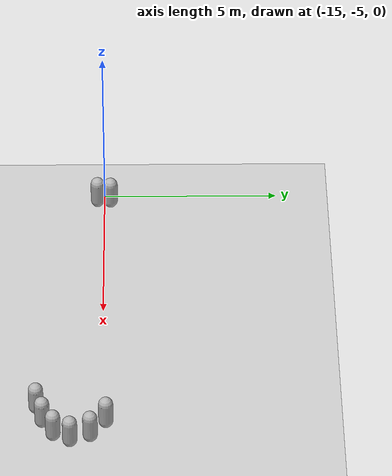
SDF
<sdf version="1.10">
 <world name="default">
  <include>
   <uri>https://fuel.gazebosim.org/1.0/OpenRobotics/models/Ground Plane</uri>
   <name>ground_plane</name>
  </include>
  <model name="capsule_2">
   <pose>-5.3776983218122858 -4.8899832114278778 0.5 0 0 0</pose>
   <link name="capsule_link">
    <inertial>
     <inertia>
      <ixx>0.074153999999999998</ixx>
      <ixy>0</ixy>
      <ixz>0</ixz>
      <iyy>0.074153999999999998</iyy>
      <iyz>0</iyz>
      <izz>0.018769000000000001</izz>
     </inertia>
     <mass>1</mass>
    </inertial>
    <collision name="capsule_collision">
     <geometry>
      <capsule><radius>0.20000000000000001</radius><length>0.59999999999999998</length></capsule>
     </geometry>
    </collision>
    <visual name="capsule_visual">
     <geometry>
      <capsule><radius>0.20000000000000001</radius><length>0.59999999999999998</length></capsule>
     </geometry>
     <material>
      <ambient>0.300000012 0.300000012 0.300000012 1</ambient>
      <diffuse>0.699999988 0.699999988 0.699999988 1</diffuse>
      <specular>1 1 1 1</specular>
     </material>
    </visual>
   </link>
   <static>false</static>
  </model>
  <model name="capsule_3">
   <pose>-4.840005297727644 -5.3061027037505539 0.5 0 0 0</pose>
   <link name="capsule_link">
    <inertial>
     <inertia>
      <ixx>0.074153999999999998</ixx>
      <ixy>0</ixy>
      <ixz>0</ixz>
      <iyy>0.074153999999999998</iyy>
      <iyz>0</iyz>
      <izz>0.018769000000000001</izz>
     </inertia>
     <mass>1</mass>
    </inertial>
    <collision name="capsule_collision">
     <geometry>
      <capsule><radius>0.20000000000000001</radius><length>0.59999999999999998</length></capsule>
     </geometry>
    </collision>
    <visual name="capsule_visual">
     <geometry>
      <capsule><radius>0.20000000000000001</radius><length>0.59999999999999998</length></capsule>
     </geometry>
     <material>
      <ambient>0.300000012 0.300000012 0.300000012 1</ambient>
      <diffuse>0.699999988 0.699999988 0.699999988 1</diffuse>
      <specular>1 1 1 1</specular>
     </material>
    </visual>
   </link>
   <static>false</static>
  </model>
  <model name="capsule_4">
   <pose>-4.6533179994280172 -5.8479368828473008 0.5 0 0 0</pose>
   <link name="capsule_link">
    <inertial>
     <inertia>
      <ixx>0.074153999999999998</ixx>
      <ixy>0</ixy>
      <ixz>0</ixz>
      <iyy>0.074153999999999998</iyy>
      <iyz>0</iyz>
      <izz>0.018769000000000001</izz>
     </inertia>
     <mass>1</mass>
    </inertial>
    <collision name="capsule_collision">
     <geometry>
      <capsule><radius>0.20000000000000001</radius><length>0.59999999999999998</length></capsule>
     </geometry>
    </collision>
    <visual name="capsule_visual">
     <geometry>
      <capsule><radius>0.20000000000000001</radius><length>0.59999999999999998</length></capsule>
     </geometry>
     <material>
      <ambient>0.300000012 0.300000012 0.300000012 1</ambient>
      <diffuse>0.699999988 0.699999988 0.699999988 1</diffuse>
      <specular>1 1 1 1</specular>
     </material>
    </visual>
   </link>
   <static>false</static>
  </model>
  <model name="capsule_5">
   <pose>-4.891414932879945 -6.3036696269984374 0.5 0 0 0</pose>
   <link name="capsule_link">
    <inertial>
     <inertia>
      <ixx>0.074153999999999998</ixx>
      <ixy>0</ixy>
      <ixz>0</ixz>
      <iyy>0.074153999999999998</iyy>
      <iyz>0</iyz>
      <izz>0.018769000000000001</izz>
     </inertia>
     <mass>1</mass>
    </inertial>
    <collision name="capsule_collision">
     <geometry>
      <capsule><radius>0.20000000000000001</radius><length>0.59999999999999998</length></capsule>
     </geometry>
    </collision>
    <visual name="capsule_visual">
     <geometry>
      <capsule><radius>0.20000000000000001</radius><length>0.59999999999999998</length></capsule>
     </geometry>
     <material>
      <ambient>0.300000012 0.300000012 0.300000012 1</ambient>
      <diffuse>0.699999988 0.699999988 0.699999988 1</diffuse>
      <specular>1 1 1 1</specular>
     </material>
    </visual>
   </link>
   <static>false</static>
  </model>
  <model name="capsule_6">
   <pose>-5.3992474591778583 -6.6073478042468112 0.5 0 0 0</pose>
   <link name="capsule_link">
    <inertial>
     <inertia>
      <ixx>0.074153999999999998</ixx>
      <ixy>0</ixy>
      <ixz>0</ixz>
      <iyy>0.074153999999999998</iyy>
      <iyz>0</iyz>
      <izz>0.018769000000000001</izz>
     </inertia>
     <mass>1</mass>
    </inertial>
    <collision name="capsule_collision">
     <geometry>
      <capsule><radius>0.20000000000000001</radius><length>0.59999999999999998</length></capsule>
     </geometry>
    </collision>
    <visual name="capsule_visual">
     <geometry>
      <capsule><radius>0.20000000000000001</radius><length>0.59999999999999998</length></capsule>
     </geometry>
     <material>
      <ambient>0.300000012 0.300000012 0.300000012 1</ambient>
      <diffuse>0.699999988 0.699999988 0.699999988 1</diffuse>
      <specular>1 1 1 1</specular>
     </material>
    </visual>
   </link>
   <static>false</static>
  </model>
  <model name="capsule_7">
   <pose>-5.9480364562324173 -6.7851222245953595 0.5 0 0 0</pose>
   <link name="capsule_link">
    <inertial>
     <inertia>
      <ixx>0.074153999999999998</ixx>
      <ixy>0</ixy>
      <ixz>0</ixz>
      <iyy>0.074153999999999998</iyy>
      <iyz>0</iyz>
      <izz>0.018769000000000001</izz>
     </inertia>
     <mass>1</mass>
    </inertial>
    <collision name="capsule_collision">
     <geometry>
      <capsule><radius>0.20000000000000001</radius><length>0.59999999999999998</length></capsule>
     </geometry>
    </collision>
    <visual name="capsule_visual">
     <geometry>
      <capsule><radius>0.20000000000000001</radius><length>0.59999999999999998</length></capsule>
     </geometry>
     <material>
      <ambient>0.300000012 0.300000012 0.300000012 1</ambient>
      <diffuse>0.699999988 0.699999988 0.699999988 1</diffuse>
      <specular>1 1 1 1</specular>
     </material>
    </visual>
   </link>
   <static>false</static>
  </model>
  <model name="capsule_10">
   <pose>-14.594478489486363 -4.8256037994011818 0.5 0 0 0</pose>
   <link name="capsule_link">
    <inertial>
     <inertia>
      <ixx>0.074153999999999998</ixx>
      <ixy>0</ixy>
      <ixz>0</ixz>
      <iyy>0.074153999999999998</iyy>
      <iyz>0</iyz>
      <izz>0.018769000000000001</izz>
     </inertia>
     <mass>1</mass>
    </inertial>
    <collision name="capsule_collision">
     <geometry>
      <capsule><radius>0.20000000000000001</radius><length>0.59999999999999998</length></capsule>
     </geometry>
    </collision>
    <visual name="capsule_visual">
     <geometry>
      <capsule><radius>0.20000000000000001</radius><length>0.59999999999999998</length></capsule>
     </geometry>
     <material>
      <ambient>0.300000012 0.300000012 0.300000012 1</ambient>
      <diffuse>0.699999988 0.699999988 0.699999988 1</diffuse>
      <specular>1 1 1 1</specular>
     </material>
    </visual>
   </link>
   <static>false</static>
  </model>
  <model name="capsule_11">
   <pose>-14.622302935783535 -5.2011600639619369 0.5 0 0 0</pose>
   <link name="capsule_link">
    <inertial>
     <inertia>
      <ixx>0.074153999999999998</ixx>
      <ixy>0</ixy>
      <ixz>0</ixz>
      <iyy>0.074153999999999998</iyy>
      <iyz>0</iyz>
      <izz>0.018769000000000001</izz>
     </inertia>
     <mass>1</mass>
    </inertial>
    <collision name="capsule_collision">
     <geometry>
      <capsule><radius>0.20000000000000001</radius><length>0.59999999999999998</length></capsule>
     </geometry>
    </collision>
    <visual name="capsule_visual">
     <geometry>
      <capsule><radius>0.20000000000000001</radius><length>0.59999999999999998</length></capsule>
     </geometry>
     <material>
      <ambient>0.300000012 0.300000012 0.300000012 1</ambient>
      <diffuse>0.699999988 0.699999988 0.699999988 1</diffuse>
      <specular>1 1 1 1</specular>
     </material>
    </visual>
   </link>
   <static>false</static>
  </model>
 </world>
</sdf>
